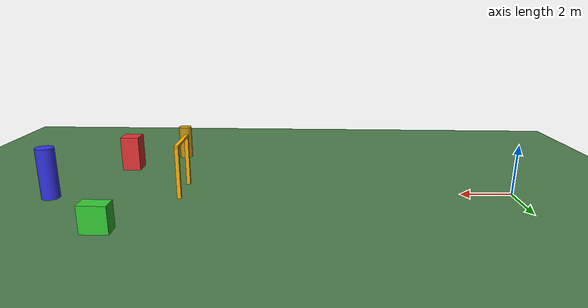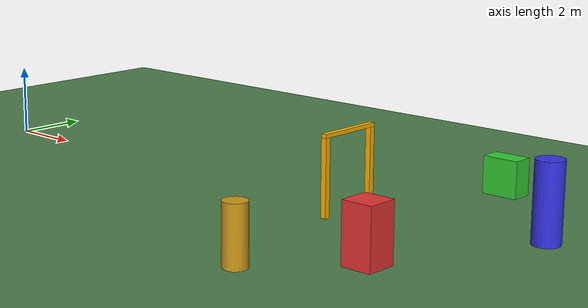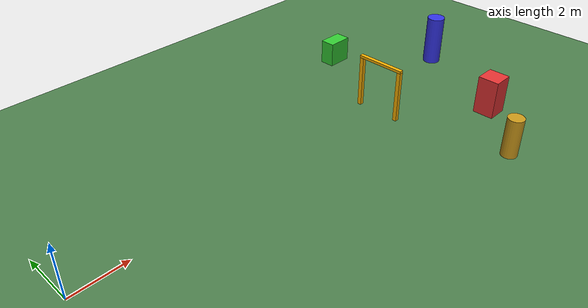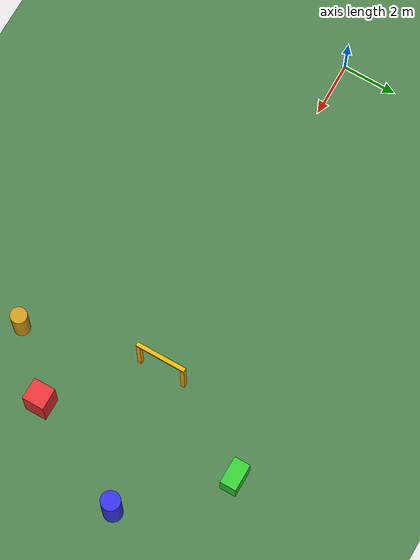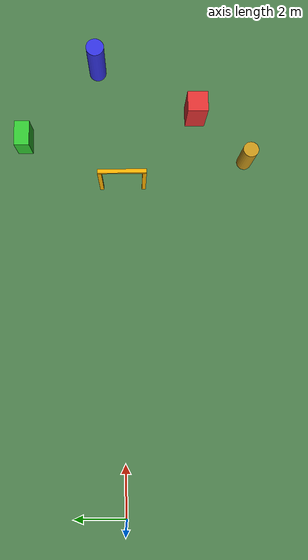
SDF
<sdf version="1.9">
 <world name="outdoor_field">
  <physics name="1ms" type="ignore">
   <max_step_size>0.001</max_step_size>
   <real_time_factor>1.0</real_time_factor>
  </physics>
  <plugin filename="gz-sim-physics-system" name="gz::sim::systems::Physics"/>
  <plugin filename="gz-sim-sensors-system" name="gz::sim::systems::Sensors">
   <render_engine>ogre2</render_engine>
  </plugin>
  <plugin filename="gz-sim-user-commands-system" name="gz::sim::systems::UserCommands"/>
  <plugin filename="gz-sim-scene-broadcaster-system" name="gz::sim::systems::SceneBroadcaster"/>
  <plugin filename="gz-sim-imu-system" name="gz::sim::systems::Imu"/>
  <plugin filename="gz-sim-navsat-system" name="gz::sim::systems::NavSat"/>
  <scene><ambient>1.0 1.0 1.0</ambient><background>0.8 0.8 0.8</background></scene>
  <spherical_coordinates>
   <latitude_deg>-35.363262</latitude_deg>
   <longitude_deg>149.165237</longitude_deg>
   <elevation>584</elevation>
   <heading_deg>0</heading_deg>
   <surface_model>EARTH_WGS84</surface_model>
  </spherical_coordinates>
  <light type="directional" name="sun">
   <pose>0 0 10 0 0 0</pose>
   <diffuse>0.8 0.8 0.8 1</diffuse>
   <specular>0.8 0.8 0.8 1</specular>
   <attenuation>
    <range>1000</range>
    <constant>0.9</constant>
    <linear>0.01</linear>
    <quadratic>0.001</quadratic>
   </attenuation>
   <direction>-0.5 0.1 -0.9</direction>
  </light>
  <model name="ground_plane">
   <static>true</static>
   <link name="link">
    <collision name="collision">
     <geometry><plane><normal>0 0 1</normal><size>200 200</size></plane></geometry>
    </collision>
    <visual name="visual">
     <geometry><plane><normal>0 0 1</normal><size>200 200</size></plane></geometry>
     <material><ambient>0.3 0.5 0.3 1</ambient><diffuse>0.3 0.5 0.3 1</diffuse></material>
    </visual>
   </link>
  </model>
  <include><uri>model://outdoor_field_scenery</uri></include>
  <model name="front_camera">
   <static>false</static>
   <pose relative_to="iris::iris_with_standoffs::base_link">0.18 0 -0.02 0 0 0</pose>
   <link name="link">
    <inertial>
     <mass>0.07</mass>
     <inertia><ixx>1e-5</ixx><ixy>0</ixy><ixz>0</ixz><iyy>1e-5</iyy><iyz>0</iyz><izz>1e-5</izz></inertia>
    </inertial>
    <visual name="visual">
     <geometry><box><size>0.025 0.09 0.025</size></box></geometry>
     <material><ambient>0.5 0.5 0.5 1</ambient><diffuse>0.6 0.6 0.6 1</diffuse></material>
    </visual>
    <sensor name="front_rgbd" type="rgbd_camera">
     <always_on>true</always_on>
     <update_rate>15</update_rate>
     <topic>/front_camera</topic>
     <camera>
      <horizontal_fov>1.5184</horizontal_fov>
      <image><width>640</width><height>480</height><format>R8G8B8</format></image>
      <clip><near>0.1</near><far>10.0</far></clip>
      <depth_camera><clip><near>0.1</near><far>10.0</far></clip></depth_camera>
     </camera>
    </sensor>
   </link>
  </model>
  <joint name="front_camera_joint" type="fixed">
   <parent>iris::iris_with_standoffs::base_link</parent>
   <child>front_camera::link</child>
  </joint>
  <model name="down_camera">
   <static>false</static>
   <pose relative_to="iris::iris_with_standoffs::base_link">0 0 -0.04 0 1.5708 0</pose>
   <link name="link">
    <inertial>
     <mass>0.03</mass>
     <inertia><ixx>1e-6</ixx><ixy>0</ixy><ixz>0</ixz><iyy>1e-6</iyy><iyz>0</iyz><izz>1e-6</izz></inertia>
    </inertial>
    <visual name="visual">
     <geometry><box><size>0.02 0.02 0.015</size></box></geometry>
     <material><ambient>0.2 0.2 0.2 1</ambient><diffuse>0.3 0.3 0.3 1</diffuse></material>
    </visual>
    <sensor name="down_rgb" type="camera">
     <always_on>true</always_on>
     <update_rate>15</update_rate>
     <topic>/down_camera</topic>
     <camera>
      <horizontal_fov>1.047</horizontal_fov>
      <image><width>640</width><height>480</height><format>R8G8B8</format></image>
      <clip><near>0.1</near><far>50.0</far></clip>
     </camera>
    </sensor>
   </link>
  </model>
  <joint name="down_camera_joint" type="fixed">
   <parent>iris::iris_with_standoffs::base_link</parent>
   <child>down_camera::link</child>
  </joint>
  <model name="lidar_rangefinder">
   <static>false</static>
   <pose relative_to="iris::iris_with_standoffs::base_link">0 0 -0.05 0 1.5708 0</pose>
   <link name="link">
    <inertial>
     <mass>0.03</mass>
     <inertia><ixx>1e-6</ixx><ixy>0</ixy><ixz>0</ixz><iyy>1e-6</iyy><iyz>0</iyz><izz>1e-6</izz></inertia>
    </inertial>
    <sensor name="lidar_rangefinder" type="gpu_lidar">
     <always_on>true</always_on>
     <update_rate>50</update_rate>
     <topic>/lidar/range</topic>
     <ray>
      <scan>
       <horizontal>
        <samples>1</samples>
        <resolution>1</resolution>
        <min_angle>0</min_angle>
        <max_angle>0</max_angle>
       </horizontal>
      </scan>
      <range><min>0.1</min><max>40.0</max><resolution>0.01</resolution></range>
     </ray>
    </sensor>
   </link>
  </model>
  <joint name="lidar_joint" type="fixed">
   <parent>iris::iris_with_standoffs::base_link</parent>
   <child>lidar_rangefinder::link</child>
  </joint>
 </world>
</sdf>

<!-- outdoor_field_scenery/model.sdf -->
<sdf version="1.9">
  <model name="outdoor_field_scenery">
    <static>true</static>

    <!-- Gate — two posts + crossbar, ~1.5m wide, ~2m high -->
    <link name="gate_left_post">
      <pose>13 -0.85 1.0 0 0 0</pose>
      <collision name="collision">
        <geometry><box><size>0.15 0.15 2.0</size></box></geometry>
      </collision>
      <visual name="visual">
        <geometry><box><size>0.15 0.15 2.0</size></box></geometry>
        <material>
          <ambient>0.9 0.6 0.0 1</ambient>
          <diffuse>1.0 0.7 0.0 1</diffuse>
        </material>
      </visual>
    </link>
    <link name="gate_right_post">
      <pose>13 0.85 1.0 0 0 0</pose>
      <collision name="collision">
        <geometry><box><size>0.15 0.15 2.0</size></box></geometry>
      </collision>
      <visual name="visual">
        <geometry><box><size>0.15 0.15 2.0</size></box></geometry>
        <material>
          <ambient>0.9 0.6 0.0 1</ambient>
          <diffuse>1.0 0.7 0.0 1</diffuse>
        </material>
      </visual>
    </link>
    <link name="gate_crossbar">
      <pose>13 0 2.05 0 0 0</pose>
      <collision name="collision">
        <geometry><box><size>0.15 1.85 0.1</size></box></geometry>
      </collision>
      <visual name="visual">
        <geometry><box><size>0.15 1.85 0.1</size></box></geometry>
        <material>
          <ambient>0.9 0.6 0.0 1</ambient>
          <diffuse>1.0 0.7 0.0 1</diffuse>
        </material>
      </visual>
    </link>

    <!-- Obstacle boxes -->
    <link name="obstacle_box_1">
      <pose>16 -3 0.75 0 0 0</pose>
      <collision name="collision">
        <geometry><box><size>0.8 0.8 1.5</size></box></geometry>
      </collision>
      <visual name="visual">
        <geometry><box><size>0.8 0.8 1.5</size></box></geometry>
        <material>
          <ambient>0.8 0.2 0.2 1</ambient>
          <diffuse>0.9 0.2 0.2 1</diffuse>
        </material>
      </visual>
    </link>
    <link name="obstacle_box_2">
      <pose>15 4 0.5 0 0 0</pose>
      <collision name="collision">
        <geometry><box><size>1.0 0.6 1.0</size></box></geometry>
      </collision>
      <visual name="visual">
        <geometry><box><size>1.0 0.6 1.0</size></box></geometry>
        <material>
          <ambient>0.2 0.7 0.2 1</ambient>
          <diffuse>0.2 0.8 0.2 1</diffuse>
        </material>
      </visual>
    </link>

    <!-- Obstacle cylinders -->
    <link name="obstacle_cylinder_1">
      <pose>18 1 1.0 0 0 0</pose>
      <collision name="collision">
        <geometry><cylinder><radius>0.35</radius><length>2.0</length></cylinder></geometry>
      </collision>
      <visual name="visual">
        <geometry><cylinder><radius>0.35</radius><length>2.0</length></cylinder></geometry>
        <material>
          <ambient>0.2 0.2 0.8 1</ambient>
          <diffuse>0.2 0.2 0.9 1</diffuse>
        </material>
      </visual>
    </link>
    <link name="obstacle_cylinder_2">
      <pose>14 -5 0.75 0 0 0</pose>
      <collision name="collision">
        <geometry><cylinder><radius>0.3</radius><length>1.5</length></cylinder></geometry>
      </collision>
      <visual name="visual">
        <geometry><cylinder><radius>0.3</radius><length>1.5</length></cylinder></geometry>
        <material>
          <ambient>0.7 0.5 0.1 1</ambient>
          <diffuse>0.8 0.6 0.1 1</diffuse>
        </material>
      </visual>
    </link>

  </model>
</sdf>
